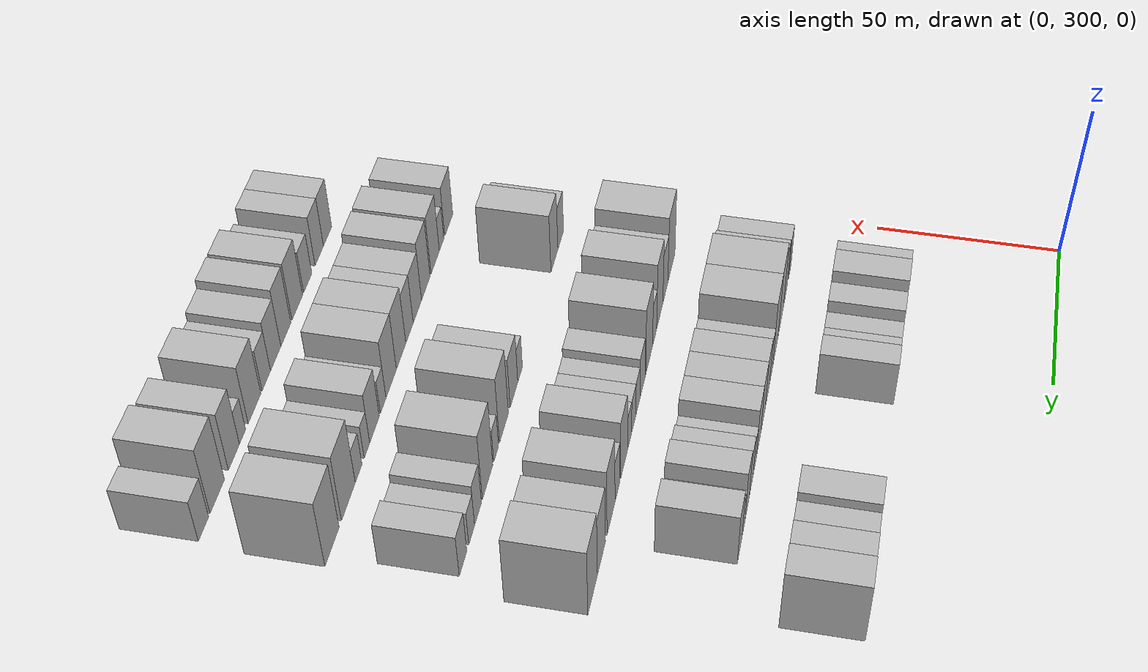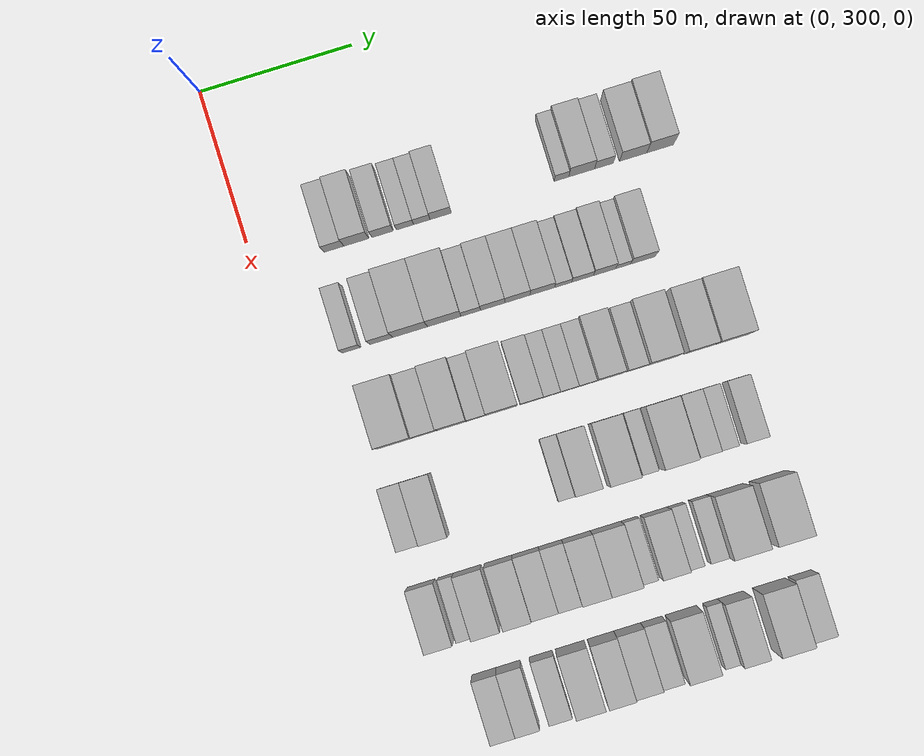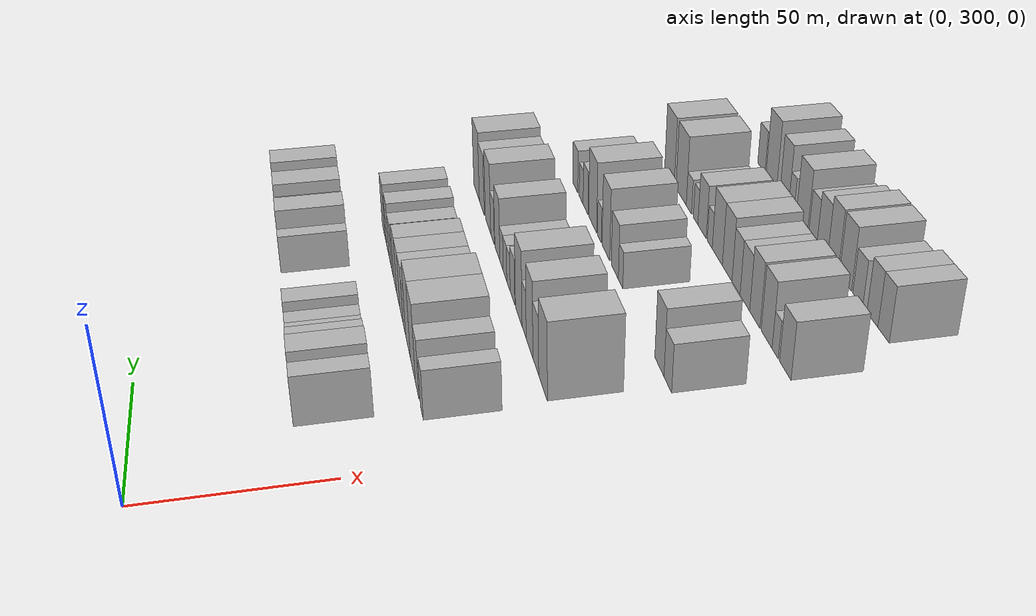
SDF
<sdf version="1.6">
 <world name="default">
  <model name="building_97">
   <static>1</static>
   <pose>50.0000 325.8655 0 0.000000 0.000000 0.000000</pose>
   <link name="link">
    <pose>0 0 7.50 0 0 0</pose>
    <collision name="collision"><geometry><box><size>20.0000 6.4181 15.0000</size></box></geometry></collision>
    <visual name="visual">
     <cast_shadows>0</cast_shadows>
     <geometry><box><size>20.0000 6.4181 15.0000</size></box></geometry>
     <material>
      <script>
       <uri>model://HANNAS_wall/materials/scripts</uri>
       <uri>model://HANNAS_wall/materials/textures</uri>
       <name>vrc/HANNAS_wall</name>
      </script>
     </material>
    </visual>
   </link>
  </model>
  <model name="building_98">
   <static>1</static>
   <pose>50.0000 333.1732 0 0.000000 0.000000 0.000000</pose>
   <link name="link">
    <pose>0 0 9.00 0 0 0</pose>
    <collision name="collision"><geometry><box><size>20.0000 8.1974 18.0000</size></box></geometry></collision>
    <visual name="visual">
     <cast_shadows>0</cast_shadows>
     <geometry><box><size>20.0000 8.1974 18.0000</size></box></geometry>
     <material>
      <script>
       <uri>model://HANNAS_wall/materials/scripts</uri>
       <uri>model://HANNAS_wall/materials/textures</uri>
       <name>vrc/HANNAS_wall</name>
      </script>
     </material>
    </visual>
   </link>
  </model>
  <model name="building_99">
   <static>1</static>
   <pose>50.0000 341.7953 0 0.000000 0.000000 0.000000</pose>
   <link name="link">
    <pose>0 0 7.50 0 0 0</pose>
    <collision name="collision"><geometry><box><size>20.0000 7.0467 15.0000</size></box></geometry></collision>
    <visual name="visual">
     <cast_shadows>0</cast_shadows>
     <geometry><box><size>20.0000 7.0467 15.0000</size></box></geometry>
     <material>
      <script>
       <uri>model://HANNAS_wall/materials/scripts</uri>
       <uri>model://HANNAS_wall/materials/textures</uri>
       <name>vrc/HANNAS_wall</name>
      </script>
     </material>
    </visual>
   </link>
  </model>
  <model name="building_100">
   <static>1</static>
   <pose>50.0000 349.1491 0 0.000000 0.000000 0.000000</pose>
   <link name="link">
    <pose>0 0 6.00 0 0 0</pose>
    <collision name="collision"><geometry><box><size>20.0000 5.6609 12.0000</size></box></geometry></collision>
    <visual name="visual">
     <cast_shadows>0</cast_shadows>
     <geometry><box><size>20.0000 5.6609 12.0000</size></box></geometry>
     <material>
      <script>
       <uri>model://HANNAS_wall/materials/scripts</uri>
       <uri>model://HANNAS_wall/materials/textures</uri>
       <name>vrc/HANNAS_wall</name>
      </script>
     </material>
    </visual>
   </link>
  </model>
  <model name="building_101">
   <static>1</static>
   <pose>50.0000 354.6615 0 0.000000 0.000000 0.000000</pose>
   <link name="link">
    <pose>0 0 6.00 0 0 0</pose>
    <collision name="collision"><geometry><box><size>20.0000 5.3639 12.0000</size></box></geometry></collision>
    <visual name="visual">
     <cast_shadows>0</cast_shadows>
     <geometry><box><size>20.0000 5.3639 12.0000</size></box></geometry>
     <material>
      <script>
       <uri>model://HANNAS_wall/materials/scripts</uri>
       <uri>model://HANNAS_wall/materials/textures</uri>
       <name>vrc/HANNAS_wall</name>
      </script>
     </material>
    </visual>
   </link>
  </model>
  <model name="building_102">
   <static>1</static>
   <pose>50.0000 360.8224 0 0.000000 0.000000 0.000000</pose>
   <link name="link">
    <pose>0 0 7.50 0 0 0</pose>
    <collision name="collision"><geometry><box><size>20.0000 6.9579 15.0000</size></box></geometry></collision>
    <visual name="visual">
     <cast_shadows>0</cast_shadows>
     <geometry><box><size>20.0000 6.9579 15.0000</size></box></geometry>
     <material>
      <script>
       <uri>model://HANNAS_wall/materials/scripts</uri>
       <uri>model://HANNAS_wall/materials/textures</uri>
       <name>vrc/HANNAS_wall</name>
      </script>
     </material>
    </visual>
   </link>
  </model>
  <model name="building_103">
   <static>1</static>
   <pose>50.0000 400.5356 0 0.000000 0.000000 0.000000</pose>
   <link name="link">
    <pose>0 0 6.00 0 0 0</pose>
    <collision name="collision"><geometry><box><size>20.0000 4.8228 12.0000</size></box></geometry></collision>
    <visual name="visual">
     <cast_shadows>0</cast_shadows>
     <geometry><box><size>20.0000 4.8228 12.0000</size></box></geometry>
     <material>
      <script>
       <uri>model://HANNAS_wall/materials/scripts</uri>
       <uri>model://HANNAS_wall/materials/textures</uri>
       <name>vrc/HANNAS_wall</name>
      </script>
     </material>
    </visual>
   </link>
  </model>
  <model name="building_104">
   <static>1</static>
   <pose>50.0000 407.1687 0 0.000000 0.000000 0.000000</pose>
   <link name="link">
    <pose>0 0 9.00 0 0 0</pose>
    <collision name="collision"><geometry><box><size>20.0000 8.4433 18.0000</size></box></geometry></collision>
    <visual name="visual">
     <cast_shadows>0</cast_shadows>
     <geometry><box><size>20.0000 8.4433 18.0000</size></box></geometry>
     <material>
      <script>
       <uri>model://HANNAS_wall/materials/scripts</uri>
       <uri>model://HANNAS_wall/materials/textures</uri>
       <name>vrc/HANNAS_wall</name>
      </script>
     </material>
    </visual>
   </link>
  </model>
  <model name="building_105">
   <static>1</static>
   <pose>50.0000 414.4777 0 0.000000 0.000000 0.000000</pose>
   <link name="link">
    <pose>0 0 7.50 0 0 0</pose>
    <collision name="collision"><geometry><box><size>20.0000 6.1748 15.0000</size></box></geometry></collision>
    <visual name="visual">
     <cast_shadows>0</cast_shadows>
     <geometry><box><size>20.0000 6.1748 15.0000</size></box></geometry>
     <material>
      <script>
       <uri>model://HANNAS_wall/materials/scripts</uri>
       <uri>model://HANNAS_wall/materials/textures</uri>
       <name>vrc/HANNAS_wall</name>
      </script>
     </material>
    </visual>
   </link>
  </model>
  <model name="building_106">
   <static>1</static>
   <pose>50.0000 424.0494 0 0.000000 0.000000 0.000000</pose>
   <link name="link">
    <pose>0 0 9.00 0 0 0</pose>
    <collision name="collision"><geometry><box><size>20.0000 8.9685 18.0000</size></box></geometry></collision>
    <visual name="visual">
     <cast_shadows>0</cast_shadows>
     <geometry><box><size>20.0000 8.9685 18.0000</size></box></geometry>
     <material>
      <script>
       <uri>model://HANNAS_wall/materials/scripts</uri>
       <uri>model://HANNAS_wall/materials/textures</uri>
       <name>vrc/HANNAS_wall</name>
      </script>
     </material>
    </visual>
   </link>
  </model>
  <model name="building_107">
   <static>1</static>
   <pose>50.0000 432.9425 0 0.000000 0.000000 0.000000</pose>
   <link name="link">
    <pose>0 0 10.50 0 0 0</pose>
    <collision name="collision"><geometry><box><size>20.0000 8.8177 21.0000</size></box></geometry></collision>
    <visual name="visual">
     <cast_shadows>0</cast_shadows>
     <geometry><box><size>20.0000 8.8177 21.0000</size></box></geometry>
     <material>
      <script>
       <uri>model://HANNAS_wall/materials/scripts</uri>
       <uri>model://HANNAS_wall/materials/textures</uri>
       <name>vrc/HANNAS_wall</name>
      </script>
     </material>
    </visual>
   </link>
  </model>
  <model name="building_222">
   <static>1</static>
   <pose>82.0000 321.8367 0 0.000000 0.000000 0.000000</pose>
   <link name="link">
    <pose>0 0 7.50 0 0 0</pose>
    <collision name="collision"><geometry><box><size>20.0000 6.0351 15.0000</size></box></geometry></collision>
    <visual name="visual">
     <cast_shadows>0</cast_shadows>
     <geometry><box><size>20.0000 6.0351 15.0000</size></box></geometry>
     <material>
      <script>
       <uri>model://HANNAS_wall/materials/scripts</uri>
       <uri>model://HANNAS_wall/materials/textures</uri>
       <name>vrc/HANNAS_wall</name>
      </script>
     </material>
    </visual>
   </link>
  </model>
  <model name="building_223">
   <static>1</static>
   <pose>82.0000 331.5959 0 0.000000 0.000000 0.000000</pose>
   <link name="link">
    <pose>0 0 9.00 0 0 0</pose>
    <collision name="collision"><geometry><box><size>20.0000 7.4834 18.0000</size></box></geometry></collision>
    <visual name="visual">
     <cast_shadows>0</cast_shadows>
     <geometry><box><size>20.0000 7.4834 18.0000</size></box></geometry>
     <material>
      <script>
       <uri>model://HANNAS_wall/materials/scripts</uri>
       <uri>model://HANNAS_wall/materials/textures</uri>
       <name>vrc/HANNAS_wall</name>
      </script>
     </material>
    </visual>
   </link>
  </model>
  <model name="building_224">
   <static>1</static>
   <pose>82.0000 341.0111 0 0.000000 0.000000 0.000000</pose>
   <link name="link">
    <pose>0 0 12.00 0 0 0</pose>
    <collision name="collision"><geometry><box><size>20.0000 11.3470 24.0000</size></box></geometry></collision>
    <visual name="visual">
     <cast_shadows>0</cast_shadows>
     <geometry><box><size>20.0000 11.3470 24.0000</size></box></geometry>
     <material>
      <script>
       <uri>model://HANNAS_wall/materials/scripts</uri>
       <uri>model://HANNAS_wall/materials/textures</uri>
       <name>vrc/HANNAS_wall</name>
      </script>
     </material>
    </visual>
   </link>
  </model>
  <model name="building_225">
   <static>1</static>
   <pose>82.0000 352.1809 0 0.000000 0.000000 0.000000</pose>
   <link name="link">
    <pose>0 0 12.00 0 0 0</pose>
    <collision name="collision"><geometry><box><size>20.0000 10.9926 24.0000</size></box></geometry></collision>
    <visual name="visual">
     <cast_shadows>0</cast_shadows>
     <geometry><box><size>20.0000 10.9926 24.0000</size></box></geometry>
     <material>
      <script>
       <uri>model://HANNAS_wall/materials/scripts</uri>
       <uri>model://HANNAS_wall/materials/textures</uri>
       <name>vrc/HANNAS_wall</name>
      </script>
     </material>
    </visual>
   </link>
  </model>
  <model name="building_226">
   <static>1</static>
   <pose>82.0000 360.8566 0 0.000000 0.000000 0.000000</pose>
   <link name="link">
    <pose>0 0 7.50 0 0 0</pose>
    <collision name="collision"><geometry><box><size>20.0000 6.3588 15.0000</size></box></geometry></collision>
    <visual name="visual">
     <cast_shadows>0</cast_shadows>
     <geometry><box><size>20.0000 6.3588 15.0000</size></box></geometry>
     <material>
      <script>
       <uri>model://HANNAS_wall/materials/scripts</uri>
       <uri>model://HANNAS_wall/materials/textures</uri>
       <name>vrc/HANNAS_wall</name>
      </script>
     </material>
    </visual>
   </link>
  </model>
  <model name="building_227">
   <static>1</static>
   <pose>82.0000 368.0112 0 0.000000 0.000000 0.000000</pose>
   <link name="link">
    <pose>0 0 9.00 0 0 0</pose>
    <collision name="collision"><geometry><box><size>20.0000 7.9503 18.0000</size></box></geometry></collision>
    <visual name="visual">
     <cast_shadows>0</cast_shadows>
     <geometry><box><size>20.0000 7.9503 18.0000</size></box></geometry>
     <material>
      <script>
       <uri>model://HANNAS_wall/materials/scripts</uri>
       <uri>model://HANNAS_wall/materials/textures</uri>
       <name>vrc/HANNAS_wall</name>
      </script>
     </material>
    </visual>
   </link>
  </model>
  <model name="building_228">
   <static>1</static>
   <pose>82.0000 376.1276 0 0.000000 0.000000 0.000000</pose>
   <link name="link">
    <pose>0 0 9.00 0 0 0</pose>
    <collision name="collision"><geometry><box><size>20.0000 8.2825 18.0000</size></box></geometry></collision>
    <visual name="visual">
     <cast_shadows>0</cast_shadows>
     <geometry><box><size>20.0000 8.2825 18.0000</size></box></geometry>
     <material>
      <script>
       <uri>model://HANNAS_wall/materials/scripts</uri>
       <uri>model://HANNAS_wall/materials/textures</uri>
       <name>vrc/HANNAS_wall</name>
      </script>
     </material>
    </visual>
   </link>
  </model>
  <model name="building_229">
   <static>1</static>
   <pose>82.0000 384.2911 0 0.000000 0.000000 0.000000</pose>
   <link name="link">
    <pose>0 0 9.00 0 0 0</pose>
    <collision name="collision"><geometry><box><size>20.0000 8.0446 18.0000</size></box></geometry></collision>
    <visual name="visual">
     <cast_shadows>0</cast_shadows>
     <geometry><box><size>20.0000 8.0446 18.0000</size></box></geometry>
     <material>
      <script>
       <uri>model://HANNAS_wall/materials/scripts</uri>
       <uri>model://HANNAS_wall/materials/textures</uri>
       <name>vrc/HANNAS_wall</name>
      </script>
     </material>
    </visual>
   </link>
  </model>
  <model name="building_230">
   <static>1</static>
   <pose>82.0000 391.1195 0 0.000000 0.000000 0.000000</pose>
   <link name="link">
    <pose>0 0 6.00 0 0 0</pose>
    <collision name="collision"><geometry><box><size>20.0000 5.6122 12.0000</size></box></geometry></collision>
    <visual name="visual">
     <cast_shadows>0</cast_shadows>
     <geometry><box><size>20.0000 5.6122 12.0000</size></box></geometry>
     <material>
      <script>
       <uri>model://HANNAS_wall/materials/scripts</uri>
       <uri>model://HANNAS_wall/materials/textures</uri>
       <name>vrc/HANNAS_wall</name>
      </script>
     </material>
    </visual>
   </link>
  </model>
  <model name="building_231">
   <static>1</static>
   <pose>82.0000 397.4575 0 0.000000 0.000000 0.000000</pose>
   <link name="link">
    <pose>0 0 7.50 0 0 0</pose>
    <collision name="collision"><geometry><box><size>20.0000 7.0638 15.0000</size></box></geometry></collision>
    <visual name="visual">
     <cast_shadows>0</cast_shadows>
     <geometry><box><size>20.0000 7.0638 15.0000</size></box></geometry>
     <material>
      <script>
       <uri>model://HANNAS_wall/materials/scripts</uri>
       <uri>model://HANNAS_wall/materials/textures</uri>
       <name>vrc/HANNAS_wall</name>
      </script>
     </material>
    </visual>
   </link>
  </model>
  <model name="building_232">
   <static>1</static>
   <pose>82.0000 404.6358 0 0.000000 0.000000 0.000000</pose>
   <link name="link">
    <pose>0 0 9.00 0 0 0</pose>
    <collision name="collision"><geometry><box><size>20.0000 7.2927 18.0000</size></box></geometry></collision>
    <visual name="visual">
     <cast_shadows>0</cast_shadows>
     <geometry><box><size>20.0000 7.2927 18.0000</size></box></geometry>
     <material>
      <script>
       <uri>model://HANNAS_wall/materials/scripts</uri>
       <uri>model://HANNAS_wall/materials/textures</uri>
       <name>vrc/HANNAS_wall</name>
      </script>
     </material>
    </visual>
   </link>
  </model>
  <model name="building_233">
   <static>1</static>
   <pose>82.0000 410.7580 0 0.000000 0.000000 0.000000</pose>
   <link name="link">
    <pose>0 0 6.00 0 0 0</pose>
    <collision name="collision"><geometry><box><size>20.0000 4.9517 12.0000</size></box></geometry></collision>
    <visual name="visual">
     <cast_shadows>0</cast_shadows>
     <geometry><box><size>20.0000 4.9517 12.0000</size></box></geometry>
     <material>
      <script>
       <uri>model://HANNAS_wall/materials/scripts</uri>
       <uri>model://HANNAS_wall/materials/textures</uri>
       <name>vrc/HANNAS_wall</name>
      </script>
     </material>
    </visual>
   </link>
  </model>
  <model name="building_234">
   <static>1</static>
   <pose>82.0000 417.2871 0 0.000000 0.000000 0.000000</pose>
   <link name="link">
    <pose>0 0 9.00 0 0 0</pose>
    <collision name="collision"><geometry><box><size>20.0000 8.1067 18.0000</size></box></geometry></collision>
    <visual name="visual">
     <cast_shadows>0</cast_shadows>
     <geometry><box><size>20.0000 8.1067 18.0000</size></box></geometry>
     <material>
      <script>
       <uri>model://HANNAS_wall/materials/scripts</uri>
       <uri>model://HANNAS_wall/materials/textures</uri>
       <name>vrc/HANNAS_wall</name>
      </script>
     </material>
    </visual>
   </link>
  </model>
  <model name="building_344">
   <static>1</static>
   <pose>114.0000 326.2953 0 0.000000 0.000000 0.000000</pose>
   <link name="link">
    <pose>0 0 12.00 0 0 0</pose>
    <collision name="collision"><geometry><box><size>20.0000 11.5043 24.0000</size></box></geometry></collision>
    <visual name="visual">
     <cast_shadows>0</cast_shadows>
     <geometry><box><size>20.0000 11.5043 24.0000</size></box></geometry>
     <material>
      <script>
       <uri>model://HANNAS_wall/materials/scripts</uri>
       <uri>model://HANNAS_wall/materials/textures</uri>
       <name>vrc/HANNAS_wall</name>
      </script>
     </material>
    </visual>
   </link>
  </model>
  <model name="building_345">
   <static>1</static>
   <pose>114.0000 336.0408 0 0.000000 0.000000 0.000000</pose>
   <link name="link">
    <pose>0 0 9.00 0 0 0</pose>
    <collision name="collision"><geometry><box><size>20.0000 7.9865 18.0000</size></box></geometry></collision>
    <visual name="visual">
     <cast_shadows>0</cast_shadows>
     <geometry><box><size>20.0000 7.9865 18.0000</size></box></geometry>
     <material>
      <script>
       <uri>model://HANNAS_wall/materials/scripts</uri>
       <uri>model://HANNAS_wall/materials/textures</uri>
       <name>vrc/HANNAS_wall</name>
      </script>
     </material>
    </visual>
   </link>
  </model>
  <model name="building_346">
   <static>1</static>
   <pose>114.0000 344.8850 0 0.000000 0.000000 0.000000</pose>
   <link name="link">
    <pose>0 0 12.00 0 0 0</pose>
    <collision name="collision"><geometry><box><size>20.0000 9.7019 24.0000</size></box></geometry></collision>
    <visual name="visual">
     <cast_shadows>0</cast_shadows>
     <geometry><box><size>20.0000 9.7019 24.0000</size></box></geometry>
     <material>
      <script>
       <uri>model://HANNAS_wall/materials/scripts</uri>
       <uri>model://HANNAS_wall/materials/textures</uri>
       <name>vrc/HANNAS_wall</name>
      </script>
     </material>
    </visual>
   </link>
  </model>
  <model name="building_347">
   <static>1</static>
   <pose>114.0000 352.8256 0 0.000000 0.000000 0.000000</pose>
   <link name="link">
    <pose>0 0 7.50 0 0 0</pose>
    <collision name="collision"><geometry><box><size>20.0000 6.1793 15.0000</size></box></geometry></collision>
    <visual name="visual">
     <cast_shadows>0</cast_shadows>
     <geometry><box><size>20.0000 6.1793 15.0000</size></box></geometry>
     <material>
      <script>
       <uri>model://HANNAS_wall/materials/scripts</uri>
       <uri>model://HANNAS_wall/materials/textures</uri>
       <name>vrc/HANNAS_wall</name>
      </script>
     </material>
    </visual>
   </link>
  </model>
  <model name="building_348">
   <static>1</static>
   <pose>114.0000 361.0072 0 0.000000 0.000000 0.000000</pose>
   <link name="link">
    <pose>0 0 12.00 0 0 0</pose>
    <collision name="collision"><geometry><box><size>20.0000 10.1839 24.0000</size></box></geometry></collision>
    <visual name="visual">
     <cast_shadows>0</cast_shadows>
     <geometry><box><size>20.0000 10.1839 24.0000</size></box></geometry>
     <material>
      <script>
       <uri>model://HANNAS_wall/materials/scripts</uri>
       <uri>model://HANNAS_wall/materials/textures</uri>
       <name>vrc/HANNAS_wall</name>
      </script>
     </material>
    </visual>
   </link>
  </model>
  <model name="building_349">
   <static>1</static>
   <pose>114.0000 370.8132 0 0.000000 0.000000 0.000000</pose>
   <link name="link">
    <pose>0 0 7.50 0 0 0</pose>
    <collision name="collision"><geometry><box><size>20.0000 7.4281 15.0000</size></box></geometry></collision>
    <visual name="visual">
     <cast_shadows>0</cast_shadows>
     <geometry><box><size>20.0000 7.4281 15.0000</size></box></geometry>
     <material>
      <script>
       <uri>model://HANNAS_wall/materials/scripts</uri>
       <uri>model://HANNAS_wall/materials/textures</uri>
       <name>vrc/HANNAS_wall</name>
      </script>
     </material>
    </visual>
   </link>
  </model>
  <model name="building_350">
   <static>1</static>
   <pose>114.0000 377.3312 0 0.000000 0.000000 0.000000</pose>
   <link name="link">
    <pose>0 0 6.00 0 0 0</pose>
    <collision name="collision"><geometry><box><size>20.0000 5.6077 12.0000</size></box></geometry></collision>
    <visual name="visual">
     <cast_shadows>0</cast_shadows>
     <geometry><box><size>20.0000 5.6077 12.0000</size></box></geometry>
     <material>
      <script>
       <uri>model://HANNAS_wall/materials/scripts</uri>
       <uri>model://HANNAS_wall/materials/textures</uri>
       <name>vrc/HANNAS_wall</name>
      </script>
     </material>
    </visual>
   </link>
  </model>
  <model name="building_351">
   <static>1</static>
   <pose>114.0000 383.1330 0 0.000000 0.000000 0.000000</pose>
   <link name="link">
    <pose>0 0 6.00 0 0 0</pose>
    <collision name="collision"><geometry><box><size>20.0000 5.9960 12.0000</size></box></geometry></collision>
    <visual name="visual">
     <cast_shadows>0</cast_shadows>
     <geometry><box><size>20.0000 5.9960 12.0000</size></box></geometry>
     <material>
      <script>
       <uri>model://HANNAS_wall/materials/scripts</uri>
       <uri>model://HANNAS_wall/materials/textures</uri>
       <name>vrc/HANNAS_wall</name>
      </script>
     </material>
    </visual>
   </link>
  </model>
  <model name="building_352">
   <static>1</static>
   <pose>114.0000 389.0446 0 0.000000 0.000000 0.000000</pose>
   <link name="link">
    <pose>0 0 6.00 0 0 0</pose>
    <collision name="collision"><geometry><box><size>20.0000 5.8270 12.0000</size></box></geometry></collision>
    <visual name="visual">
     <cast_shadows>0</cast_shadows>
     <geometry><box><size>20.0000 5.8270 12.0000</size></box></geometry>
     <material>
      <script>
       <uri>model://HANNAS_wall/materials/scripts</uri>
       <uri>model://HANNAS_wall/materials/textures</uri>
       <name>vrc/HANNAS_wall</name>
      </script>
     </material>
    </visual>
   </link>
  </model>
  <model name="building_353">
   <static>1</static>
   <pose>114.0000 396.4284 0 0.000000 0.000000 0.000000</pose>
   <link name="link">
    <pose>0 0 10.50 0 0 0</pose>
    <collision name="collision"><geometry><box><size>20.0000 8.9406 21.0000</size></box></geometry></collision>
    <visual name="visual">
     <cast_shadows>0</cast_shadows>
     <geometry><box><size>20.0000 8.9406 21.0000</size></box></geometry>
     <material>
      <script>
       <uri>model://HANNAS_wall/materials/scripts</uri>
       <uri>model://HANNAS_wall/materials/textures</uri>
       <name>vrc/HANNAS_wall</name>
      </script>
     </material>
    </visual>
   </link>
  </model>
  <model name="building_354">
   <static>1</static>
   <pose>114.0000 405.1800 0 0.000000 0.000000 0.000000</pose>
   <link name="link">
    <pose>0 0 7.50 0 0 0</pose>
    <collision name="collision"><geometry><box><size>20.0000 6.5626 15.0000</size></box></geometry></collision>
    <visual name="visual">
     <cast_shadows>0</cast_shadows>
     <geometry><box><size>20.0000 6.5626 15.0000</size></box></geometry>
     <material>
      <script>
       <uri>model://HANNAS_wall/materials/scripts</uri>
       <uri>model://HANNAS_wall/materials/textures</uri>
       <name>vrc/HANNAS_wall</name>
      </script>
     </material>
    </visual>
   </link>
  </model>
  <model name="building_355">
   <static>1</static>
   <pose>114.0000 413.5789 0 0.000000 0.000000 0.000000</pose>
   <link name="link">
    <pose>0 0 12.00 0 0 0</pose>
    <collision name="collision"><geometry><box><size>20.0000 10.2352 24.0000</size></box></geometry></collision>
    <visual name="visual">
     <cast_shadows>0</cast_shadows>
     <geometry><box><size>20.0000 10.2352 24.0000</size></box></geometry>
     <material>
      <script>
       <uri>model://HANNAS_wall/materials/scripts</uri>
       <uri>model://HANNAS_wall/materials/textures</uri>
       <name>vrc/HANNAS_wall</name>
      </script>
     </material>
    </visual>
   </link>
  </model>
  <model name="building_356">
   <static>1</static>
   <pose>114.0000 425.6651 0 0.000000 0.000000 0.000000</pose>
   <link name="link">
    <pose>0 0 10.50 0 0 0</pose>
    <collision name="collision"><geometry><box><size>20.0000 9.9372 21.0000</size></box></geometry></collision>
    <visual name="visual">
     <cast_shadows>0</cast_shadows>
     <geometry><box><size>20.0000 9.9372 21.0000</size></box></geometry>
     <material>
      <script>
       <uri>model://HANNAS_wall/materials/scripts</uri>
       <uri>model://HANNAS_wall/materials/textures</uri>
       <name>vrc/HANNAS_wall</name>
      </script>
     </material>
    </visual>
   </link>
  </model>
  <model name="building_357">
   <static>1</static>
   <pose>114.0000 436.3594 0 0.000000 0.000000 0.000000</pose>
   <link name="link">
    <pose>0 0 12.00 0 0 0</pose>
    <collision name="collision"><geometry><box><size>20.0000 11.4515 24.0000</size></box></geometry></collision>
    <visual name="visual">
     <cast_shadows>0</cast_shadows>
     <geometry><box><size>20.0000 11.4515 24.0000</size></box></geometry>
     <material>
      <script>
       <uri>model://HANNAS_wall/materials/scripts</uri>
       <uri>model://HANNAS_wall/materials/textures</uri>
       <name>vrc/HANNAS_wall</name>
      </script>
     </material>
    </visual>
   </link>
  </model>
  <model name="building_463">
   <static>1</static>
   <pose>146.0000 321.2345 0 0.000000 0.000000 0.000000</pose>
   <link name="link">
    <pose>0 0 7.50 0 0 0</pose>
    <collision name="collision"><geometry><box><size>20.0000 7.4321 15.0000</size></box></geometry></collision>
    <visual name="visual">
     <cast_shadows>0</cast_shadows>
     <geometry><box><size>20.0000 7.4321 15.0000</size></box></geometry>
     <material>
      <script>
       <uri>model://HANNAS_wall/materials/scripts</uri>
       <uri>model://HANNAS_wall/materials/textures</uri>
       <name>vrc/HANNAS_wall</name>
      </script>
     </material>
    </visual>
   </link>
  </model>
  <model name="building_464">
   <static>1</static>
   <pose>146.0000 329.5236 0 0.000000 0.000000 0.000000</pose>
   <link name="link">
    <pose>0 0 10.50 0 0 0</pose>
    <collision name="collision"><geometry><box><size>20.0000 9.1460 21.0000</size></box></geometry></collision>
    <visual name="visual">
     <cast_shadows>0</cast_shadows>
     <geometry><box><size>20.0000 9.1460 21.0000</size></box></geometry>
     <material>
      <script>
       <uri>model://HANNAS_wall/materials/scripts</uri>
       <uri>model://HANNAS_wall/materials/textures</uri>
       <name>vrc/HANNAS_wall</name>
      </script>
     </material>
    </visual>
   </link>
  </model>
  <model name="building_465">
   <static>1</static>
   <pose>146.0000 372.1372 0 0.000000 0.000000 0.000000</pose>
   <link name="link">
    <pose>0 0 6.00 0 0 0</pose>
    <collision name="collision"><geometry><box><size>20.0000 5.3604 12.0000</size></box></geometry></collision>
    <visual name="visual">
     <cast_shadows>0</cast_shadows>
     <geometry><box><size>20.0000 5.3604 12.0000</size></box></geometry>
     <material>
      <script>
       <uri>model://HANNAS_wall/materials/scripts</uri>
       <uri>model://HANNAS_wall/materials/textures</uri>
       <name>vrc/HANNAS_wall</name>
      </script>
     </material>
    </visual>
   </link>
  </model>
  <model name="building_466">
   <static>1</static>
   <pose>146.0000 379.2198 0 0.000000 0.000000 0.000000</pose>
   <link name="link">
    <pose>0 0 9.00 0 0 0</pose>
    <collision name="collision"><geometry><box><size>20.0000 8.8049 18.0000</size></box></geometry></collision>
    <visual name="visual">
     <cast_shadows>0</cast_shadows>
     <geometry><box><size>20.0000 8.8049 18.0000</size></box></geometry>
     <material>
      <script>
       <uri>model://HANNAS_wall/materials/scripts</uri>
       <uri>model://HANNAS_wall/materials/textures</uri>
       <name>vrc/HANNAS_wall</name>
      </script>
     </material>
    </visual>
   </link>
  </model>
  <model name="building_467">
   <static>1</static>
   <pose>146.0000 390.5699 0 0.000000 0.000000 0.000000</pose>
   <link name="link">
    <pose>0 0 12.00 0 0 0</pose>
    <collision name="collision"><geometry><box><size>20.0000 9.8951 24.0000</size></box></geometry></collision>
    <visual name="visual">
     <cast_shadows>0</cast_shadows>
     <geometry><box><size>20.0000 9.8951 24.0000</size></box></geometry>
     <material>
      <script>
       <uri>model://HANNAS_wall/materials/scripts</uri>
       <uri>model://HANNAS_wall/materials/textures</uri>
       <name>vrc/HANNAS_wall</name>
      </script>
     </material>
    </visual>
   </link>
  </model>
  <model name="building_468">
   <static>1</static>
   <pose>146.0000 399.1483 0 0.000000 0.000000 0.000000</pose>
   <link name="link">
    <pose>0 0 6.00 0 0 0</pose>
    <collision name="collision"><geometry><box><size>20.0000 5.2617 12.0000</size></box></geometry></collision>
    <visual name="visual">
     <cast_shadows>0</cast_shadows>
     <geometry><box><size>20.0000 5.2617 12.0000</size></box></geometry>
     <material>
      <script>
       <uri>model://HANNAS_wall/materials/scripts</uri>
       <uri>model://HANNAS_wall/materials/textures</uri>
       <name>vrc/HANNAS_wall</name>
      </script>
     </material>
    </visual>
   </link>
  </model>
  <model name="building_469">
   <static>1</static>
   <pose>146.0000 408.2868 0 0.000000 0.000000 0.000000</pose>
   <link name="link">
    <pose>0 0 12.00 0 0 0</pose>
    <collision name="collision"><geometry><box><size>20.0000 11.0151 24.0000</size></box></geometry></collision>
    <visual name="visual">
     <cast_shadows>0</cast_shadows>
     <geometry><box><size>20.0000 11.0151 24.0000</size></box></geometry>
     <material>
      <script>
       <uri>model://HANNAS_wall/materials/scripts</uri>
       <uri>model://HANNAS_wall/materials/textures</uri>
       <name>vrc/HANNAS_wall</name>
      </script>
     </material>
    </visual>
   </link>
  </model>
  <model name="building_470">
   <static>1</static>
   <pose>146.0000 418.2739 0 0.000000 0.000000 0.000000</pose>
   <link name="link">
    <pose>0 0 7.50 0 0 0</pose>
    <collision name="collision"><geometry><box><size>20.0000 6.9591 15.0000</size></box></geometry></collision>
    <visual name="visual">
     <cast_shadows>0</cast_shadows>
     <geometry><box><size>20.0000 6.9591 15.0000</size></box></geometry>
     <material>
      <script>
       <uri>model://HANNAS_wall/materials/scripts</uri>
       <uri>model://HANNAS_wall/materials/textures</uri>
       <name>vrc/HANNAS_wall</name>
      </script>
     </material>
    </visual>
   </link>
  </model>
  <model name="building_471">
   <static>1</static>
   <pose>146.0000 424.6858 0 0.000000 0.000000 0.000000</pose>
   <link name="link">
    <pose>0 0 6.00 0 0 0</pose>
    <collision name="collision"><geometry><box><size>20.0000 5.8648 12.0000</size></box></geometry></collision>
    <visual name="visual">
     <cast_shadows>0</cast_shadows>
     <geometry><box><size>20.0000 5.8648 12.0000</size></box></geometry>
     <material>
      <script>
       <uri>model://HANNAS_wall/materials/scripts</uri>
       <uri>model://HANNAS_wall/materials/textures</uri>
       <name>vrc/HANNAS_wall</name>
      </script>
     </material>
    </visual>
   </link>
  </model>
  <model name="building_472">
   <static>1</static>
   <pose>146.0000 433.3159 0 0.000000 0.000000 0.000000</pose>
   <link name="link">
    <pose>0 0 7.50 0 0 0</pose>
    <collision name="collision"><geometry><box><size>20.0000 7.3955 15.0000</size></box></geometry></collision>
    <visual name="visual">
     <cast_shadows>0</cast_shadows>
     <geometry><box><size>20.0000 7.3955 15.0000</size></box></geometry>
     <material>
      <script>
       <uri>model://HANNAS_wall/materials/scripts</uri>
       <uri>model://HANNAS_wall/materials/textures</uri>
       <name>vrc/HANNAS_wall</name>
      </script>
     </material>
    </visual>
   </link>
  </model>
  <model name="building_583">
   <static>1</static>
   <pose>178.0000 321.2301 0 0.000000 0.000000 0.000000</pose>
   <link name="link">
    <pose>0 0 9.00 0 0 0</pose>
    <collision name="collision"><geometry><box><size>20.0000 8.9894 18.0000</size></box></geometry></collision>
    <visual name="visual">
     <cast_shadows>0</cast_shadows>
     <geometry><box><size>20.0000 8.9894 18.0000</size></box></geometry>
     <material>
      <script>
       <uri>model://HANNAS_wall/materials/scripts</uri>
       <uri>model://HANNAS_wall/materials/textures</uri>
       <name>vrc/HANNAS_wall</name>
      </script>
     </material>
    </visual>
   </link>
  </model>
  <model name="building_584">
   <static>1</static>
   <pose>178.0000 329.2088 0 0.000000 0.000000 0.000000</pose>
   <link name="link">
    <pose>0 0 6.00 0 0 0</pose>
    <collision name="collision"><geometry><box><size>20.0000 4.9680 12.0000</size></box></geometry></collision>
    <visual name="visual">
     <cast_shadows>0</cast_shadows>
     <geometry><box><size>20.0000 4.9680 12.0000</size></box></geometry>
     <material>
      <script>
       <uri>model://HANNAS_wall/materials/scripts</uri>
       <uri>model://HANNAS_wall/materials/textures</uri>
       <name>vrc/HANNAS_wall</name>
      </script>
     </material>
    </visual>
   </link>
  </model>
  <model name="building_585">
   <static>1</static>
   <pose>178.0000 336.2463 0 0.000000 0.000000 0.000000</pose>
   <link name="link">
    <pose>0 0 10.50 0 0 0</pose>
    <collision name="collision"><geometry><box><size>20.0000 9.1072 21.0000</size></box></geometry></collision>
    <visual name="visual">
     <cast_shadows>0</cast_shadows>
     <geometry><box><size>20.0000 9.1072 21.0000</size></box></geometry>
     <material>
      <script>
       <uri>model://HANNAS_wall/materials/scripts</uri>
       <uri>model://HANNAS_wall/materials/textures</uri>
       <name>vrc/HANNAS_wall</name>
      </script>
     </material>
    </visual>
   </link>
  </model>
  <model name="building_586">
   <static>1</static>
   <pose>178.0000 346.2989 0 0.000000 0.000000 0.000000</pose>
   <link name="link">
    <pose>0 0 10.50 0 0 0</pose>
    <collision name="collision"><geometry><box><size>20.0000 8.9979 21.0000</size></box></geometry></collision>
    <visual name="visual">
     <cast_shadows>0</cast_shadows>
     <geometry><box><size>20.0000 8.9979 21.0000</size></box></geometry>
     <material>
      <script>
       <uri>model://HANNAS_wall/materials/scripts</uri>
       <uri>model://HANNAS_wall/materials/textures</uri>
       <name>vrc/HANNAS_wall</name>
      </script>
     </material>
    </visual>
   </link>
  </model>
  <model name="building_587">
   <static>1</static>
   <pose>178.0000 355.1062 0 0.000000 0.000000 0.000000</pose>
   <link name="link">
    <pose>0 0 9.00 0 0 0</pose>
    <collision name="collision"><geometry><box><size>20.0000 8.6167 18.0000</size></box></geometry></collision>
    <visual name="visual">
     <cast_shadows>0</cast_shadows>
     <geometry><box><size>20.0000 8.6167 18.0000</size></box></geometry>
     <material>
      <script>
       <uri>model://HANNAS_wall/materials/scripts</uri>
       <uri>model://HANNAS_wall/materials/textures</uri>
       <name>vrc/HANNAS_wall</name>
      </script>
     </material>
    </visual>
   </link>
  </model>
  <model name="building_588">
   <static>1</static>
   <pose>178.0000 363.1820 0 0.000000 0.000000 0.000000</pose>
   <link name="link">
    <pose>0 0 9.00 0 0 0</pose>
    <collision name="collision"><geometry><box><size>20.0000 7.5349 18.0000</size></box></geometry></collision>
    <visual name="visual">
     <cast_shadows>0</cast_shadows>
     <geometry><box><size>20.0000 7.5349 18.0000</size></box></geometry>
     <material>
      <script>
       <uri>model://HANNAS_wall/materials/scripts</uri>
       <uri>model://HANNAS_wall/materials/textures</uri>
       <name>vrc/HANNAS_wall</name>
      </script>
     </material>
    </visual>
   </link>
  </model>
  <model name="building_589">
   <static>1</static>
   <pose>178.0000 371.6239 0 0.000000 0.000000 0.000000</pose>
   <link name="link">
    <pose>0 0 10.50 0 0 0</pose>
    <collision name="collision"><geometry><box><size>20.0000 9.3489 21.0000</size></box></geometry></collision>
    <visual name="visual">
     <cast_shadows>0</cast_shadows>
     <geometry><box><size>20.0000 9.3489 21.0000</size></box></geometry>
     <material>
      <script>
       <uri>model://HANNAS_wall/materials/scripts</uri>
       <uri>model://HANNAS_wall/materials/textures</uri>
       <name>vrc/HANNAS_wall</name>
      </script>
     </material>
    </visual>
   </link>
  </model>
  <model name="building_590">
   <static>1</static>
   <pose>178.0000 381.3382 0 0.000000 0.000000 0.000000</pose>
   <link name="link">
    <pose>0 0 10.50 0 0 0</pose>
    <collision name="collision"><geometry><box><size>20.0000 10.0797 21.0000</size></box></geometry></collision>
    <visual name="visual">
     <cast_shadows>0</cast_shadows>
     <geometry><box><size>20.0000 10.0797 21.0000</size></box></geometry>
     <material>
      <script>
       <uri>model://HANNAS_wall/materials/scripts</uri>
       <uri>model://HANNAS_wall/materials/textures</uri>
       <name>vrc/HANNAS_wall</name>
      </script>
     </material>
    </visual>
   </link>
  </model>
  <model name="building_591">
   <static>1</static>
   <pose>178.0000 389.0240 0 0.000000 0.000000 0.000000</pose>
   <link name="link">
    <pose>0 0 6.00 0 0 0</pose>
    <collision name="collision"><geometry><box><size>20.0000 5.2919 12.0000</size></box></geometry></collision>
    <visual name="visual">
     <cast_shadows>0</cast_shadows>
     <geometry><box><size>20.0000 5.2919 12.0000</size></box></geometry>
     <material>
      <script>
       <uri>model://HANNAS_wall/materials/scripts</uri>
       <uri>model://HANNAS_wall/materials/textures</uri>
       <name>vrc/HANNAS_wall</name>
      </script>
     </material>
    </visual>
   </link>
  </model>
  <model name="building_592">
   <static>1</static>
   <pose>178.0000 397.0975 0 0.000000 0.000000 0.000000</pose>
   <link name="link">
    <pose>0 0 9.00 0 0 0</pose>
    <collision name="collision"><geometry><box><size>20.0000 8.8552 18.0000</size></box></geometry></collision>
    <visual name="visual">
     <cast_shadows>0</cast_shadows>
     <geometry><box><size>20.0000 8.8552 18.0000</size></box></geometry>
     <material>
      <script>
       <uri>model://HANNAS_wall/materials/scripts</uri>
       <uri>model://HANNAS_wall/materials/textures</uri>
       <name>vrc/HANNAS_wall</name>
      </script>
     </material>
    </visual>
   </link>
  </model>
  <model name="building_593">
   <static>1</static>
   <pose>178.0000 404.0323 0 0.000000 0.000000 0.000000</pose>
   <link name="link">
    <pose>0 0 6.00 0 0 0</pose>
    <collision name="collision"><geometry><box><size>20.0000 5.0144 12.0000</size></box></geometry></collision>
    <visual name="visual">
     <cast_shadows>0</cast_shadows>
     <geometry><box><size>20.0000 5.0144 12.0000</size></box></geometry>
     <material>
      <script>
       <uri>model://HANNAS_wall/materials/scripts</uri>
       <uri>model://HANNAS_wall/materials/textures</uri>
       <name>vrc/HANNAS_wall</name>
      </script>
     </material>
    </visual>
   </link>
  </model>
  <model name="building_594">
   <static>1</static>
   <pose>178.0000 411.5089 0 0.000000 0.000000 0.000000</pose>
   <link name="link">
    <pose>0 0 6.00 0 0 0</pose>
    <collision name="collision"><geometry><box><size>20.0000 5.9389 12.0000</size></box></geometry></collision>
    <visual name="visual">
     <cast_shadows>0</cast_shadows>
     <geometry><box><size>20.0000 5.9389 12.0000</size></box></geometry>
     <material>
      <script>
       <uri>model://HANNAS_wall/materials/scripts</uri>
       <uri>model://HANNAS_wall/materials/textures</uri>
       <name>vrc/HANNAS_wall</name>
      </script>
     </material>
    </visual>
   </link>
  </model>
  <model name="building_595">
   <static>1</static>
   <pose>178.0000 420.4367 0 0.000000 0.000000 0.000000</pose>
   <link name="link">
    <pose>0 0 12.00 0 0 0</pose>
    <collision name="collision"><geometry><box><size>20.0000 11.9166 24.0000</size></box></geometry></collision>
    <visual name="visual">
     <cast_shadows>0</cast_shadows>
     <geometry><box><size>20.0000 11.9166 24.0000</size></box></geometry>
     <material>
      <script>
       <uri>model://HANNAS_wall/materials/scripts</uri>
       <uri>model://HANNAS_wall/materials/textures</uri>
       <name>vrc/HANNAS_wall</name>
      </script>
     </material>
    </visual>
   </link>
  </model>
  <model name="building_596">
   <static>1</static>
   <pose>178.0000 434.2857 0 0.000000 0.000000 0.000000</pose>
   <link name="link">
    <pose>0 0 12.00 0 0 0</pose>
    <collision name="collision"><geometry><box><size>20.0000 11.7815 24.0000</size></box></geometry></collision>
    <visual name="visual">
     <cast_shadows>0</cast_shadows>
     <geometry><box><size>20.0000 11.7815 24.0000</size></box></geometry>
     <material>
      <script>
       <uri>model://HANNAS_wall/materials/scripts</uri>
       <uri>model://HANNAS_wall/materials/textures</uri>
       <name>vrc/HANNAS_wall</name>
      </script>
     </material>
    </visual>
   </link>
  </model>
  <model name="building_708">
   <static>1</static>
   <pose>210.0000 331.8128 0 0.000000 0.000000 0.000000</pose>
   <link name="link">
    <pose>0 0 9.00 0 0 0</pose>
    <collision name="collision"><geometry><box><size>20.0000 7.8754 18.0000</size></box></geometry></collision>
    <visual name="visual">
     <cast_shadows>0</cast_shadows>
     <geometry><box><size>20.0000 7.8754 18.0000</size></box></geometry>
     <material>
      <script>
       <uri>model://HANNAS_wall/materials/scripts</uri>
       <uri>model://HANNAS_wall/materials/textures</uri>
       <name>vrc/HANNAS_wall</name>
      </script>
     </material>
    </visual>
   </link>
  </model>
  <model name="building_709">
   <static>1</static>
   <pose>210.0000 339.6680 0 0.000000 0.000000 0.000000</pose>
   <link name="link">
    <pose>0 0 9.00 0 0 0</pose>
    <collision name="collision"><geometry><box><size>20.0000 7.8350 18.0000</size></box></geometry></collision>
    <visual name="visual">
     <cast_shadows>0</cast_shadows>
     <geometry><box><size>20.0000 7.8350 18.0000</size></box></geometry>
     <material>
      <script>
       <uri>model://HANNAS_wall/materials/scripts</uri>
       <uri>model://HANNAS_wall/materials/textures</uri>
       <name>vrc/HANNAS_wall</name>
      </script>
     </material>
    </visual>
   </link>
  </model>
  <model name="building_710">
   <static>1</static>
   <pose>210.0000 350.3193 0 0.000000 0.000000 0.000000</pose>
   <link name="link">
    <pose>0 0 7.50 0 0 0</pose>
    <collision name="collision"><geometry><box><size>20.0000 7.4677 15.0000</size></box></geometry></collision>
    <visual name="visual">
     <cast_shadows>0</cast_shadows>
     <geometry><box><size>20.0000 7.4677 15.0000</size></box></geometry>
     <material>
      <script>
       <uri>model://HANNAS_wall/materials/scripts</uri>
       <uri>model://HANNAS_wall/materials/textures</uri>
       <name>vrc/HANNAS_wall</name>
      </script>
     </material>
    </visual>
   </link>
  </model>
  <model name="building_711">
   <static>1</static>
   <pose>210.0000 359.7581 0 0.000000 0.000000 0.000000</pose>
   <link name="link">
    <pose>0 0 10.50 0 0 0</pose>
    <collision name="collision"><geometry><box><size>20.0000 9.4100 21.0000</size></box></geometry></collision>
    <visual name="visual">
     <cast_shadows>0</cast_shadows>
     <geometry><box><size>20.0000 9.4100 21.0000</size></box></geometry>
     <material>
      <script>
       <uri>model://HANNAS_wall/materials/scripts</uri>
       <uri>model://HANNAS_wall/materials/textures</uri>
       <name>vrc/HANNAS_wall</name>
      </script>
     </material>
    </visual>
   </link>
  </model>
  <model name="building_712">
   <static>1</static>
   <pose>210.0000 369.7831 0 0.000000 0.000000 0.000000</pose>
   <link name="link">
    <pose>0 0 10.50 0 0 0</pose>
    <collision name="collision"><geometry><box><size>20.0000 8.6401 21.0000</size></box></geometry></collision>
    <visual name="visual">
     <cast_shadows>0</cast_shadows>
     <geometry><box><size>20.0000 8.6401 21.0000</size></box></geometry>
     <material>
      <script>
       <uri>model://HANNAS_wall/materials/scripts</uri>
       <uri>model://HANNAS_wall/materials/textures</uri>
       <name>vrc/HANNAS_wall</name>
      </script>
     </material>
    </visual>
   </link>
  </model>
  <model name="building_713">
   <static>1</static>
   <pose>210.0000 378.4882 0 0.000000 0.000000 0.000000</pose>
   <link name="link">
    <pose>0 0 9.00 0 0 0</pose>
    <collision name="collision"><geometry><box><size>20.0000 8.7701 18.0000</size></box></geometry></collision>
    <visual name="visual">
     <cast_shadows>0</cast_shadows>
     <geometry><box><size>20.0000 8.7701 18.0000</size></box></geometry>
     <material>
      <script>
       <uri>model://HANNAS_wall/materials/scripts</uri>
       <uri>model://HANNAS_wall/materials/textures</uri>
       <name>vrc/HANNAS_wall</name>
      </script>
     </material>
    </visual>
   </link>
  </model>
  <model name="building_714">
   <static>1</static>
   <pose>210.0000 386.3816 0 0.000000 0.000000 0.000000</pose>
   <link name="link">
    <pose>0 0 7.50 0 0 0</pose>
    <collision name="collision"><geometry><box><size>20.0000 7.0166 15.0000</size></box></geometry></collision>
    <visual name="visual">
     <cast_shadows>0</cast_shadows>
     <geometry><box><size>20.0000 7.0166 15.0000</size></box></geometry>
     <material>
      <script>
       <uri>model://HANNAS_wall/materials/scripts</uri>
       <uri>model://HANNAS_wall/materials/textures</uri>
       <name>vrc/HANNAS_wall</name>
      </script>
     </material>
    </visual>
   </link>
  </model>
  <model name="building_715">
   <static>1</static>
   <pose>210.0000 396.0049 0 0.000000 0.000000 0.000000</pose>
   <link name="link">
    <pose>0 0 10.50 0 0 0</pose>
    <collision name="collision"><geometry><box><size>20.0000 10.2300 21.0000</size></box></geometry></collision>
    <visual name="visual">
     <cast_shadows>0</cast_shadows>
     <geometry><box><size>20.0000 10.2300 21.0000</size></box></geometry>
     <material>
      <script>
       <uri>model://HANNAS_wall/materials/scripts</uri>
       <uri>model://HANNAS_wall/materials/textures</uri>
       <name>vrc/HANNAS_wall</name>
      </script>
     </material>
    </visual>
   </link>
  </model>
  <model name="building_716">
   <static>1</static>
   <pose>210.0000 405.5699 0 0.000000 0.000000 0.000000</pose>
   <link name="link">
    <pose>0 0 6.00 0 0 0</pose>
    <collision name="collision"><geometry><box><size>20.0000 4.9002 12.0000</size></box></geometry></collision>
    <visual name="visual">
     <cast_shadows>0</cast_shadows>
     <geometry><box><size>20.0000 4.9002 12.0000</size></box></geometry>
     <material>
      <script>
       <uri>model://HANNAS_wall/materials/scripts</uri>
       <uri>model://HANNAS_wall/materials/textures</uri>
       <name>vrc/HANNAS_wall</name>
      </script>
     </material>
    </visual>
   </link>
  </model>
  <model name="building_717">
   <static>1</static>
   <pose>210.0000 412.2597 0 0.000000 0.000000 0.000000</pose>
   <link name="link">
    <pose>0 0 10.50 0 0 0</pose>
    <collision name="collision"><geometry><box><size>20.0000 8.4792 21.0000</size></box></geometry></collision>
    <visual name="visual">
     <cast_shadows>0</cast_shadows>
     <geometry><box><size>20.0000 8.4792 21.0000</size></box></geometry>
     <material>
      <script>
       <uri>model://HANNAS_wall/materials/scripts</uri>
       <uri>model://HANNAS_wall/materials/textures</uri>
       <name>vrc/HANNAS_wall</name>
      </script>
     </material>
    </visual>
   </link>
  </model>
  <model name="building_718">
   <static>1</static>
   <pose>210.0000 424.8469 0 0.000000 0.000000 0.000000</pose>
   <link name="link">
    <pose>0 0 12.00 0 0 0</pose>
    <collision name="collision"><geometry><box><size>20.0000 10.6953 24.0000</size></box></geometry></collision>
    <visual name="visual">
     <cast_shadows>0</cast_shadows>
     <geometry><box><size>20.0000 10.6953 24.0000</size></box></geometry>
     <material>
      <script>
       <uri>model://HANNAS_wall/materials/scripts</uri>
       <uri>model://HANNAS_wall/materials/textures</uri>
       <name>vrc/HANNAS_wall</name>
      </script>
     </material>
    </visual>
   </link>
  </model>
  <model name="building_719">
   <static>1</static>
   <pose>210.0000 434.9399 0 0.000000 0.000000 0.000000</pose>
   <link name="link">
    <pose>0 0 7.50 0 0 0</pose>
    <collision name="collision"><geometry><box><size>20.0000 7.4907 15.0000</size></box></geometry></collision>
    <visual name="visual">
     <cast_shadows>0</cast_shadows>
     <geometry><box><size>20.0000 7.4907 15.0000</size></box></geometry>
     <material>
      <script>
       <uri>model://HANNAS_wall/materials/scripts</uri>
       <uri>model://HANNAS_wall/materials/textures</uri>
       <name>vrc/HANNAS_wall</name>
      </script>
     </material>
    </visual>
   </link>
  </model>
 </world>
</sdf>
